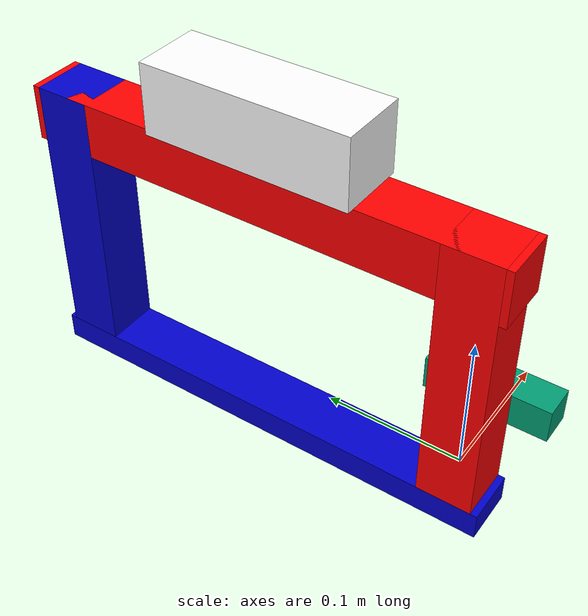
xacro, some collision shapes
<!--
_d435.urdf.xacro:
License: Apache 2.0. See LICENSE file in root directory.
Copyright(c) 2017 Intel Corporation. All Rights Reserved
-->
<?xml version="1.0"?>

<robot xmlns:xacro="http://www.ros.org/wiki/xacro" name="frame_realsense">

  <xacro:arg name="use_nominal_extrinsics" default="false"/>
  <xacro:arg name="add_plug" default="false" />
  <xacro:arg name="use_mesh" default="true" />
  <xacro:include filename="$(find realsense2_description)/urdf/_d435.urdf.xacro" />

  <link name="base_link" />
  <xacro:sensor_d435 parent="base_link" use_nominal_extrinsics="true" add_plug="false" use_mesh="true">
    <origin xyz="0 0 0" rpy="0 0 0"/>
  </xacro:sensor_d435>

  <material name="blue">
    <color rgba="0 0 0.8 1"/>
  </material>
  <material name="red">
    <color rgba="1 0 0 1"/>
  </material>
  <material name="white">
    <color rgba="1 1 1 1"/>
  </material>

  <link name="world">
    <visual>
      <geometry>
        <box size="0.04 0.35 0.02"/>
      </geometry>
      <origin rpy="0 0 0" xyz="0 0.15 -0.03"/>
       <material name="blue"/>
    </visual>
  </link>

  <link name="pillar_left">
    <visual>
      <geometry>
        <box size="0.04 0.04 0.2"/>
      </geometry>
      <origin rpy="0 0 0" xyz="0 0.3 0.08"/>
       <material name="blue"/>
    </visual>
  </link>

  <link name="pillar_right">
    <visual>
      <geometry>
        <box size="0.04 0.04 0.2"/>
      </geometry>
      <origin rpy="0 0 0" xyz="0 0 0"/>
       <material name="red"/>
    </visual>
  </link>

  <link name="pillar_top">
    <visual>
      <geometry>
        <box size="0.04 0.35 0.04"/>
      </geometry>
      <origin rpy="0 0 0" xyz="0 0.15 0.16"/>
       <material name="red"/>
    </visual>
  </link>

  <link name="up_mount">
    <visual>
      <geometry>
        <box size="0.05 0.148 0.05"/>
      </geometry>
      <origin rpy="0 0 0" xyz="0.0 0.15 0.205"/>
      <material name="white"/>
    </visual>
  </link>

  <joint name="base_to_pillar_left" type="fixed">
    <parent link="world"/>
    <child link="pillar_left"/>
    <origin xyz="0 0 0.0"/>
  </joint>

  <joint name="base_to_pillar_right" type="fixed">
    <parent link="world"/>
    <child link="pillar_right"/>
      <origin xyz="0 0 0.08"/>
  </joint>

  <joint name="pillar_to_pillar_top" type="fixed">
    <parent link="pillar_left"/>
    <child link="pillar_top"/>
      <origin xyz="0 0 0.0"/>
  </joint>

  <joint name="pillartop_to_up_mount" type="fixed">
    <parent link="pillar_top"/>
    <child link="up_mount"/>
      <origin xyz="0 0 0.0"/>
  </joint>

  <joint name="mount_to_camera" type="fixed">
    <parent link="up_mount"/>
    <child link="base_link"/>
    <origin xyz="0.03 0 0.02" rpy="0 0 0"/>
  </joint>

</robot>

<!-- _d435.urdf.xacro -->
<robot name="sensor_d435" xmlns:xacro="http://www.ros.org/wiki/xacro">
  <!-- Includes -->
  <xacro:include filename="$(find descriptions)/realsense2_description/urdf/_materials.urdf.xacro" />
  <xacro:include filename="$(find descriptions)/realsense2_description/urdf/_usb_plug.urdf.xacro" />

  <xacro:macro name="sensor_d435" params="parent *origin name:=camera use_nominal_extrinsics:=false add_plug:=false use_mesh:=true">
    <xacro:property name="M_PI" value="3.1415926535897931" />

    <!-- The following values are approximate, and the camera node
     publishing TF values with actual calibrated camera extrinsic values -->
    <xacro:property name="d435_cam_depth_to_infra1_offset" value="0.0"/>
    <xacro:property name="d435_cam_depth_to_infra2_offset" value="-0.050"/>
    <xacro:property name="d435_cam_depth_to_color_offset" value="0.015"/>

    <!-- The following values model the aluminum peripherial case for the
  	D435 camera, with the camera joint represented by the actual
  	peripherial camera tripod mount -->
    <xacro:property name="d435_cam_width" value="0.090"/>
    <xacro:property name="d435_cam_height" value="0.025"/>
    <xacro:property name="d435_cam_depth" value="0.02505"/>
    <xacro:property name="d435_cam_mount_from_center_offset" value="0.0149"/>
    <!-- glass cover is 0.1 mm inwards from front aluminium plate -->
    <xacro:property name="d435_glass_to_front" value="0.1e-3"/>
    <!-- see datasheet Revision 007, Fig. 4-4 page 65 -->
    <xacro:property name="d435_zero_depth_to_glass" value="4.2e-3"/>
    <!-- convenience precomputation to avoid clutter-->
    <xacro:property name="d435_mesh_x_offset" value="${d435_cam_mount_from_center_offset-d435_glass_to_front-d435_zero_depth_to_glass}"/>

    <!-- The following offset is relative the the physical D435 camera peripherial
  	camera tripod mount -->
    <xacro:property name="d435_cam_depth_px" value="${d435_cam_mount_from_center_offset}"/>
    <xacro:property name="d435_cam_depth_py" value="0.0175"/>
    <xacro:property name="d435_cam_depth_pz" value="${d435_cam_height/2}"/>

    <!-- camera body, with origin at bottom screw mount -->
    <joint name="${name}_joint" type="fixed">
      <xacro:insert_block name="origin" />
      <parent link="${parent}"/>
      <child link="${name}_bottom_screw_frame" />
    </joint>
    <link name="${name}_bottom_screw_frame"/>

    <joint name="${name}_link_joint" type="fixed">
      <origin xyz="${d435_mesh_x_offset} ${d435_cam_depth_py} ${d435_cam_depth_pz}" rpy="0 0 0"/>
      <parent link="${name}_bottom_screw_frame"/>
      <child link="${name}_link" />
    </joint>

    <link name="${name}_link">
      <visual>
        <xacro:if value="${use_mesh}">
          <!-- the mesh origin is at front plate in between the two infrared camera axes -->
          <origin xyz="${d435_zero_depth_to_glass + d435_glass_to_front} ${-d435_cam_depth_py} 0" rpy="${M_PI/2} 0 ${M_PI/2}"/>
          <geometry>
            <mesh filename="package://descriptions/realsense2_description/meshes/d435.dae" />
          </geometry>
        </xacro:if>
        <xacro:unless value="${use_mesh}">
          <origin xyz="0 ${-d435_cam_depth_py} 0" rpy="0 0 0"/>
          <geometry>
            <box size="${d435_cam_depth} ${d435_cam_width} ${d435_cam_height}"/>
          </geometry>
          <material name="aluminum"/>
        </xacro:unless>
      </visual>
      <collision>
        <origin xyz="0 ${-d435_cam_depth_py} 0" rpy="0 0 0"/>
        <geometry>
          <box size="${d435_cam_depth} ${d435_cam_width} ${d435_cam_height}"/>
        </geometry>
      </collision>
      <inertial>
        <!-- The following are not reliable values, and should not be used for modeling -->
        <mass value="0.072" />
        <origin xyz="0 0 0" />
        <inertia ixx="0.003881243" ixy="0.0" ixz="0.0" iyy="0.000498940" iyz="0.0" izz="0.003879257" />
      </inertial>
    </link>

    <!-- Use the nominal extrinsics between camera frames if the calibrated extrinsics aren't being published. e.g. running the device in simulation  -->
    <xacro:if value="${use_nominal_extrinsics}">
      <!-- camera depth joints and links -->
      <joint name="${name}_depth_joint" type="fixed">
        <origin xyz="0 0 0" rpy="0 0 0"/>
        <parent link="${name}_link"/>
        <child link="${name}_depth_frame" />
      </joint>
      <link name="${name}_depth_frame"/>

      <joint name="${name}_depth_optical_joint" type="fixed">
        <origin xyz="0 0 0" rpy="${-M_PI/2} 0 ${-M_PI/2}" />
        <parent link="${name}_depth_frame" />
        <child link="${name}_depth_optical_frame" />
      </joint>
      <link name="${name}_depth_optical_frame"/>

      <!-- camera left IR joints and links -->
      <joint name="${name}_infra1_joint" type="fixed">
        <origin xyz="0 ${d435_cam_depth_to_infra1_offset} 0" rpy="0 0 0" />
        <parent link="${name}_link" />
        <child link="${name}_infra1_frame" />
      </joint>
      <link name="${name}_infra1_frame"/>

      <joint name="${name}_infra1_optical_joint" type="fixed">
        <origin xyz="0 0 0" rpy="${-M_PI/2} 0 ${-M_PI/2}" />
        <parent link="${name}_infra1_frame" />
        <child link="${name}_infra1_optical_frame" />
      </joint>
      <link name="${name}_infra1_optical_frame"/>

      <!-- camera right IR joints and links -->
      <joint name="${name}_infra2_joint" type="fixed">
        <origin xyz="0 ${d435_cam_depth_to_infra2_offset} 0" rpy="0 0 0" />
        <parent link="${name}_link" />
        <child link="${name}_infra2_frame" />
      </joint>
      <link name="${name}_infra2_frame"/>

      <joint name="${name}_infra2_optical_joint" type="fixed">
        <origin xyz="0 0 0" rpy="${-M_PI/2} 0 ${-M_PI/2}" />
        <parent link="${name}_infra2_frame" />
        <child link="${name}_infra2_optical_frame" />
      </joint>
      <link name="${name}_infra2_optical_frame"/>

      <!-- camera color joints and links -->
      <joint name="${name}_color_joint" type="fixed">
        <origin xyz="0 ${d435_cam_depth_to_color_offset} 0" rpy="0 0 0" />
        <parent link="${name}_link" />
        <child link="${name}_color_frame" />
      </joint>
      <link name="${name}_color_frame"/>

      <joint name="${name}_color_optical_joint" type="fixed">
        <origin xyz="0 0 0" rpy="${-M_PI/2} 0 ${-M_PI/2}" />
        <parent link="${name}_color_frame" />
        <child link="${name}_color_optical_frame" />
      </joint>
      <link name="${name}_color_optical_frame"/>
    </xacro:if>

    <xacro:if value="${add_plug}">
      <xacro:usb_plug parent="${name}_link" name="${name}_usb_plug">
        <origin xyz="${d435_cam_mount_from_center_offset - 0.02095} ${-d435_cam_depth_py - 0.0353} 0" rpy="0 0 0"/>
      </xacro:usb_plug>
    </xacro:if>
  </xacro:macro>
</robot>
